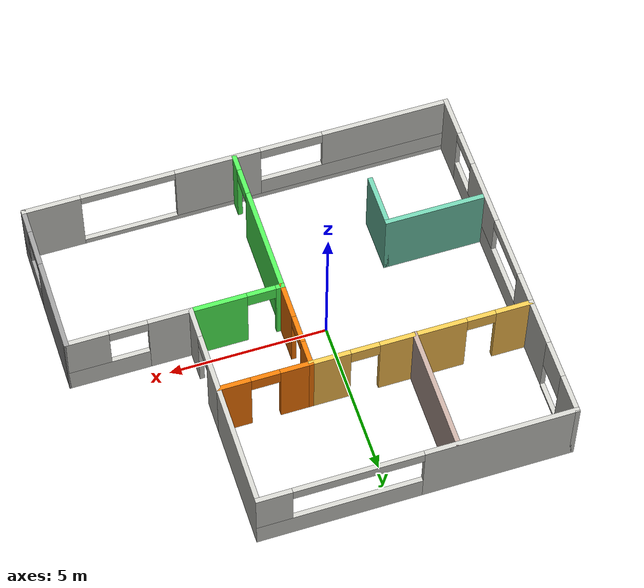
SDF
<?xml version='1.0'?>
<sdf version='1.6'>
  <model name='Apartment'>
    <pose frame=''>1.16007 0.412153 0 0 -0 0</pose>
    <link name='Wall_11'>
      <pose frame=''>1.52493 1.92485 0 0 -0 0</pose>
      <visual name='Wall_11_Visual_0'>
        <pose frame=''>-0.9825 0 1.25 0 -0 0</pose>
        <geometry>
          <box>
            <size>1.035 0.15 2.5</size>
          </box>
        </geometry>
        <material>
          <script>
            <uri>file://media/materials/scripts/gazebo.material</uri>
            <name>Gazebo/Grey</name>
          </script>
          <ambient>0.996078 0.47451 0.0196078 1</ambient>
        </material>
        <meta>
          <layer>0</layer>
        </meta>
      </visual>
      <collision name='Wall_11_Collision_0'>
        <geometry>
          <box>
            <size>1.035 0.15 2.5</size>
          </box>
        </geometry>
        <pose frame=''>-0.9825 0 1.25 0 -0 0</pose>
      </collision>
      <visual name='Wall_11_Visual_1'>
        <pose frame=''>0.9675 0 1.25 0 -0 0</pose>
        <geometry>
          <box>
            <size>1.065 0.15 2.5</size>
          </box>
        </geometry>
        <material>
          <script>
            <uri>file://media/materials/scripts/gazebo.material</uri>
            <name>Gazebo/Grey</name>
          </script>
          <ambient>0.996078 0.47451 0.0196078 1</ambient>
        </material>
        <meta>
          <layer>0</layer>
        </meta>
      </visual>
      <collision name='Wall_11_Collision_1'>
        <geometry>
          <box>
            <size>1.065 0.15 2.5</size>
          </box>
        </geometry>
        <pose frame=''>0.9675 0 1.25 0 -0 0</pose>
      </collision>
      <visual name='Wall_11_Visual_2'>
        <pose frame=''>-0.015 0 2.25 0 -0 0</pose>
        <geometry>
          <box>
            <size>0.9 0.15 0.5</size>
          </box>
        </geometry>
        <material>
          <script>
            <uri>file://media/materials/scripts/gazebo.material</uri>
            <name>Gazebo/Grey</name>
          </script>
          <ambient>0.996078 0.47451 0.0196078 1</ambient>
        </material>
        <meta>
          <layer>0</layer>
        </meta>
      </visual>
      <collision name='Wall_11_Collision_2'>
        <geometry>
          <box>
            <size>0.9 0.15 0.5</size>
          </box>
        </geometry>
        <pose frame=''>-0.015 0 2.25 0 -0 0</pose>
      </collision>
    </link>
    <link name='Wall_12'>
      <pose frame=''>2.94993 0.519847 0 0 0 -1.5708</pose>
      <visual name='Wall_12_Visual_0'>
        <pose frame=''>-0.962535 0 1.25 0 -0 0</pose>
        <geometry>
          <box>
            <size>1.03493 0.15 2.5</size>
          </box>
        </geometry>
        <material>
          <script>
            <uri>file://media/materials/scripts/gazebo.material</uri>
            <name>Gazebo/CeilingTiled</name>
          </script>
          <ambient>1 1 1 1</ambient>
        </material>
        <meta>
          <layer>0</layer>
        </meta>
      </visual>
      <collision name='Wall_12_Collision_0'>
        <geometry>
          <box>
            <size>1.03493 0.15 2.5</size>
          </box>
        </geometry>
        <pose frame=''>-0.962535 0 1.25 0 -0 0</pose>
      </collision>
      <visual name='Wall_12_Visual_1'>
        <pose frame=''>0.967465 0 1.25 0 -0 0</pose>
        <geometry>
          <box>
            <size>1.02507 0.15 2.5</size>
          </box>
        </geometry>
        <material>
          <script>
            <uri>file://media/materials/scripts/gazebo.material</uri>
            <name>Gazebo/CeilingTiled</name>
          </script>
          <ambient>1 1 1 1</ambient>
        </material>
        <meta>
          <layer>0</layer>
        </meta>
      </visual>
      <collision name='Wall_12_Collision_1'>
        <geometry>
          <box>
            <size>1.02507 0.15 2.5</size>
          </box>
        </geometry>
        <pose frame=''>0.967465 0 1.25 0 -0 0</pose>
      </collision>
      <visual name='Wall_12_Visual_2'>
        <pose frame=''>0.00493 0 2.25 0 -0 0</pose>
        <geometry>
          <box>
            <size>0.9 0.15 0.5</size>
          </box>
        </geometry>
        <material>
          <script>
            <uri>file://media/materials/scripts/gazebo.material</uri>
            <name>Gazebo/CeilingTiled</name>
          </script>
          <ambient>1 1 1 1</ambient>
        </material>
        <meta>
          <layer>0</layer>
        </meta>
      </visual>
      <collision name='Wall_12_Collision_2'>
        <geometry>
          <box>
            <size>0.9 0.15 0.5</size>
          </box>
        </geometry>
        <pose frame=''>0.00493 0 2.25 0 -0 0</pose>
      </collision>
    </link>
    <link name='Wall_13'>
      <pose frame=''>1.52493 -0.885153 0 0 -0 3.14159</pose>
      <visual name='Wall_13_Visual_0'>
        <pose frame=''>-0.592536 0 1.25 0 -0 0</pose>
        <geometry>
          <box>
            <size>1.81507 0.15 2.5</size>
          </box>
        </geometry>
        <material>
          <script>
            <uri>file://media/materials/scripts/gazebo.material</uri>
            <name>Gazebo/Grey</name>
          </script>
          <ambient>0.321569 1 0.345098 1</ambient>
        </material>
        <meta>
          <layer>0</layer>
        </meta>
      </visual>
      <collision name='Wall_13_Collision_0'>
        <geometry>
          <box>
            <size>1.81507 0.15 2.5</size>
          </box>
        </geometry>
        <pose frame=''>-0.592536 0 1.25 0 -0 0</pose>
      </collision>
      <visual name='Wall_13_Visual_1'>
        <pose frame=''>1.35754 0 1.25 0 -0 0</pose>
        <geometry>
          <box>
            <size>0.285073 0.15 2.5</size>
          </box>
        </geometry>
        <material>
          <script>
            <uri>file://media/materials/scripts/gazebo.material</uri>
            <name>Gazebo/Grey</name>
          </script>
          <ambient>0.321569 1 0.345098 1</ambient>
        </material>
        <meta>
          <layer>0</layer>
        </meta>
      </visual>
      <collision name='Wall_13_Collision_1'>
        <geometry>
          <box>
            <size>0.285073 0.15 2.5</size>
          </box>
        </geometry>
        <pose frame=''>1.35754 0 1.25 0 -0 0</pose>
      </collision>
      <visual name='Wall_13_Visual_2'>
        <pose frame=''>0.765 0 2.25 0 -0 0</pose>
        <geometry>
          <box>
            <size>0.9 0.15 0.5</size>
          </box>
        </geometry>
        <material>
          <script>
            <uri>file://media/materials/scripts/gazebo.material</uri>
            <name>Gazebo/Grey</name>
          </script>
          <ambient>0.321569 1 0.345098 1</ambient>
        </material>
        <meta>
          <layer>0</layer>
        </meta>
      </visual>
      <collision name='Wall_13_Collision_2'>
        <geometry>
          <box>
            <size>0.9 0.15 0.5</size>
          </box>
        </geometry>
        <pose frame=''>0.765 0 2.25 0 -0 0</pose>
      </collision>
    </link>
    <link name='Wall_14'>
      <pose frame=''>0.099928 0.519847 0 0 -0 1.5708</pose>
      <visual name='Wall_14_Visual_0'>
        <pose frame=''>-0.8739 0 1.25 0 -0 0</pose>
        <geometry>
          <box>
            <size>1.21261 0.15 2.5</size>
          </box>
        </geometry>
        <material>
          <script>
            <uri>file://media/materials/scripts/gazebo.material</uri>
            <name>Gazebo/Grey</name>
          </script>
          <ambient>0.996078 0.47451 0.0196078 1</ambient>
        </material>
        <meta>
          <layer>0</layer>
        </meta>
      </visual>
      <collision name='Wall_14_Collision_0'>
        <geometry>
          <box>
            <size>1.21261 0.15 2.5</size>
          </box>
        </geometry>
        <pose frame=''>-0.8739 0 1.25 0 -0 0</pose>
      </collision>
      <visual name='Wall_14_Visual_1'>
        <pose frame=''>1.0563 0 1.25 0 -0 0</pose>
        <geometry>
          <box>
            <size>0.847799 0.15 2.5</size>
          </box>
        </geometry>
        <material>
          <script>
            <uri>file://media/materials/scripts/gazebo.material</uri>
            <name>Gazebo/Grey</name>
          </script>
          <ambient>0.996078 0.47451 0.0196078 1</ambient>
        </material>
        <meta>
          <layer>0</layer>
        </meta>
      </visual>
      <collision name='Wall_14_Collision_1'>
        <geometry>
          <box>
            <size>0.847799 0.15 2.5</size>
          </box>
        </geometry>
        <pose frame=''>1.0563 0 1.25 0 -0 0</pose>
      </collision>
      <visual name='Wall_14_Visual_2'>
        <pose frame=''>0.182404 0 2.25 0 -0 0</pose>
        <geometry>
          <box>
            <size>0.9 0.15 0.5</size>
          </box>
        </geometry>
        <material>
          <script>
            <uri>file://media/materials/scripts/gazebo.material</uri>
            <name>Gazebo/Grey</name>
          </script>
          <ambient>0.996078 0.47451 0.0196078 1</ambient>
        </material>
        <meta>
          <layer>0</layer>
        </meta>
      </visual>
      <collision name='Wall_14_Collision_2'>
        <geometry>
          <box>
            <size>0.9 0.15 0.5</size>
          </box>
        </geometry>
        <pose frame=''>0.182404 0 2.25 0 -0 0</pose>
      </collision>
    </link>
    <link name='Wall_16'>
      <pose frame=''>4.87493 -0.885153 0 0 -0 0</pose>
      <visual name='Wall_16_Visual_0'>
        <pose frame=''>-1.29069 0 1.25 0 -0 0</pose>
        <geometry>
          <box>
            <size>1.41862 0.15 2.5</size>
          </box>
        </geometry>
        <material>
          <script>
            <uri>file://media/materials/scripts/gazebo.material</uri>
            <name>Gazebo/CeilingTiled</name>
          </script>
          <ambient>0.760784 0.662745 0.627451 1</ambient>
        </material>
        <meta>
          <layer>0</layer>
        </meta>
      </visual>
      <collision name='Wall_16_Collision_0'>
        <geometry>
          <box>
            <size>1.41862 0.15 2.5</size>
          </box>
        </geometry>
        <pose frame=''>-1.29069 0 1.25 0 -0 0</pose>
      </collision>
      <visual name='Wall_16_Visual_1'>
        <pose frame=''>0.709309 0 0.45 0 -0 0</pose>
        <geometry>
          <box>
            <size>2.58138 0.15 0.9</size>
          </box>
        </geometry>
        <material>
          <script>
            <uri>file://media/materials/scripts/gazebo.material</uri>
            <name>Gazebo/CeilingTiled</name>
          </script>
          <ambient>0.760784 0.662745 0.627451 1</ambient>
        </material>
        <meta>
          <layer>0</layer>
        </meta>
      </visual>
      <collision name='Wall_16_Collision_1'>
        <geometry>
          <box>
            <size>2.58138 0.15 0.9</size>
          </box>
        </geometry>
        <pose frame=''>0.709309 0 0.45 0 -0 0</pose>
      </collision>
      <visual name='Wall_16_Visual_2'>
        <pose frame=''>1.30931 0 1.7 0 -0 0</pose>
        <geometry>
          <box>
            <size>1.38138 0.15 1.6</size>
          </box>
        </geometry>
        <material>
          <script>
            <uri>file://media/materials/scripts/gazebo.material</uri>
            <name>Gazebo/CeilingTiled</name>
          </script>
          <ambient>0.760784 0.662745 0.627451 1</ambient>
        </material>
        <meta>
          <layer>0</layer>
        </meta>
      </visual>
      <collision name='Wall_16_Collision_2'>
        <geometry>
          <box>
            <size>1.38138 0.15 1.6</size>
          </box>
        </geometry>
        <pose frame=''>1.30931 0 1.7 0 -0 0</pose>
      </collision>
      <visual name='Wall_16_Visual_3'>
        <pose frame=''>0.018619 0 2.3 0 -0 0</pose>
        <geometry>
          <box>
            <size>1.2 0.15 0.4</size>
          </box>
        </geometry>
        <material>
          <script>
            <uri>file://media/materials/scripts/gazebo.material</uri>
            <name>Gazebo/CeilingTiled</name>
          </script>
          <ambient>0.760784 0.662745 0.627451 1</ambient>
        </material>
        <meta>
          <layer>0</layer>
        </meta>
      </visual>
      <collision name='Wall_16_Collision_3'>
        <geometry>
          <box>
            <size>1.2 0.15 0.4</size>
          </box>
        </geometry>
        <pose frame=''>0.018619 0 2.3 0 -0 0</pose>
      </collision>
    </link>
    <link name='Wall_18'>
      <pose frame=''>6.80018 -3.33 0 0 0 -1.57069</pose>
      <visual name='Wall_18_Visual_0'>
        <pose frame=''>-1.01487 0 1.25 0 -0 0</pose>
        <geometry>
          <box>
            <size>3.00995 0.15 2.5</size>
          </box>
        </geometry>
        <material>
          <script>
            <uri>file://media/materials/scripts/gazebo.material</uri>
            <name>Gazebo/Grey</name>
          </script>
          <ambient>1 1 1 1</ambient>
        </material>
        <meta>
          <layer>0</layer>
        </meta>
      </visual>
      <collision name='Wall_18_Collision_0'>
        <geometry>
          <box>
            <size>3.00995 0.15 2.5</size>
          </box>
        </geometry>
        <pose frame=''>-1.01487 0 1.25 0 -0 0</pose>
      </collision>
      <visual name='Wall_18_Visual_1'>
        <pose frame=''>1.50497 0 0.45 0 -0 0</pose>
        <geometry>
          <box>
            <size>2.02974 0.15 0.9</size>
          </box>
        </geometry>
        <material>
          <script>
            <uri>file://media/materials/scripts/gazebo.material</uri>
            <name>Gazebo/Grey</name>
          </script>
          <ambient>1 1 1 1</ambient>
        </material>
        <meta>
          <layer>0</layer>
        </meta>
      </visual>
      <collision name='Wall_18_Collision_1'>
        <geometry>
          <box>
            <size>2.02974 0.15 0.9</size>
          </box>
        </geometry>
        <pose frame=''>1.50497 0 0.45 0 -0 0</pose>
      </collision>
      <visual name='Wall_18_Visual_2'>
        <pose frame=''>2.10497 0 1.7 0 -0 0</pose>
        <geometry>
          <box>
            <size>0.829741 0.15 1.6</size>
          </box>
        </geometry>
        <material>
          <script>
            <uri>file://media/materials/scripts/gazebo.material</uri>
            <name>Gazebo/Grey</name>
          </script>
          <ambient>1 1 1 1</ambient>
        </material>
        <meta>
          <layer>0</layer>
        </meta>
      </visual>
      <collision name='Wall_18_Collision_2'>
        <geometry>
          <box>
            <size>0.829741 0.15 1.6</size>
          </box>
        </geometry>
        <pose frame=''>2.10497 0 1.7 0 -0 0</pose>
      </collision>
      <visual name='Wall_18_Visual_3'>
        <pose frame=''>1.0901 0 2.3 0 -0 0</pose>
        <geometry>
          <box>
            <size>1.2 0.15 0.4</size>
          </box>
        </geometry>
        <material>
          <script>
            <uri>file://media/materials/scripts/gazebo.material</uri>
            <name>Gazebo/Grey</name>
          </script>
          <ambient>1 1 1 1</ambient>
        </material>
        <meta>
          <layer>0</layer>
        </meta>
      </visual>
      <collision name='Wall_18_Collision_3'>
        <geometry>
          <box>
            <size>1.2 0.15 0.4</size>
          </box>
        </geometry>
        <pose frame=''>1.0901 0 2.3 0 -0 0</pose>
      </collision>
    </link>
    <link name='Wall_19'>
      <pose frame=''>0.000427 -5.77484 0 0 -0 3.14159</pose>
      <visual name='Wall_19_Visual_0'>
        <pose frame=''>-5.94597 0 1.25 0 -0 0</pose>
        <geometry>
          <box>
            <size>1.85806 0.15 2.5</size>
          </box>
        </geometry>
        <material>
          <script>
            <uri>file://media/materials/scripts/gazebo.material</uri>
            <name>Gazebo/CeilingTiled</name>
          </script>
          <ambient>1 1 1 1</ambient>
        </material>
        <meta>
          <layer>0</layer>
        </meta>
      </visual>
      <collision name='Wall_19_Collision_0'>
        <geometry>
          <box>
            <size>1.85806 0.15 2.5</size>
          </box>
        </geometry>
        <pose frame=''>-5.94597 0 1.25 0 -0 0</pose>
      </collision>
      <visual name='Wall_19_Visual_1'>
        <pose frame=''>0.929031 0 0.1 0 -0 0</pose>
        <geometry>
          <box>
            <size>11.8919 0.15 0.2</size>
          </box>
        </geometry>
        <material>
          <script>
            <uri>file://media/materials/scripts/gazebo.material</uri>
            <name>Gazebo/CeilingTiled</name>
          </script>
          <ambient>1 1 1 1</ambient>
        </material>
        <meta>
          <layer>0</layer>
        </meta>
      </visual>
      <collision name='Wall_19_Collision_1'>
        <geometry>
          <box>
            <size>11.8919 0.15 0.2</size>
          </box>
        </geometry>
        <pose frame=''>0.929031 0 0.1 0 -0 0</pose>
      </collision>
      <visual name='Wall_19_Visual_2'>
        <pose frame=''>-0.643119 0 1.35 0 -0 0</pose>
        <geometry>
          <box>
            <size>2.74764 0.15 2.3</size>
          </box>
        </geometry>
        <material>
          <script>
            <uri>file://media/materials/scripts/gazebo.material</uri>
            <name>Gazebo/CeilingTiled</name>
          </script>
          <ambient>1 1 1 1</ambient>
        </material>
        <meta>
          <layer>0</layer>
        </meta>
      </visual>
      <collision name='Wall_19_Collision_2'>
        <geometry>
          <box>
            <size>2.74764 0.15 2.3</size>
          </box>
        </geometry>
        <pose frame=''>-0.643119 0 1.35 0 -0 0</pose>
      </collision>
      <visual name='Wall_19_Visual_3'>
        <pose frame=''>3.80285 0 0.55 0 -0 0</pose>
        <geometry>
          <box>
            <size>6.1443 0.15 0.7</size>
          </box>
        </geometry>
        <material>
          <script>
            <uri>file://media/materials/scripts/gazebo.material</uri>
            <name>Gazebo/CeilingTiled</name>
          </script>
          <ambient>1 1 1 1</ambient>
        </material>
        <meta>
          <layer>0</layer>
        </meta>
      </visual>
      <collision name='Wall_19_Collision_3'>
        <geometry>
          <box>
            <size>6.1443 0.15 0.7</size>
          </box>
        </geometry>
        <pose frame=''>3.80285 0 0.55 0 -0 0</pose>
      </collision>
      <visual name='Wall_19_Visual_4'>
        <pose frame=''>4.80285 0 1.7 0 -0 0</pose>
        <geometry>
          <box>
            <size>4.1443 0.15 1.6</size>
          </box>
        </geometry>
        <material>
          <script>
            <uri>file://media/materials/scripts/gazebo.material</uri>
            <name>Gazebo/CeilingTiled</name>
          </script>
          <ambient>1 1 1 1</ambient>
        </material>
        <meta>
          <layer>0</layer>
        </meta>
      </visual>
      <collision name='Wall_19_Collision_4'>
        <geometry>
          <box>
            <size>4.1443 0.15 1.6</size>
          </box>
        </geometry>
        <pose frame=''>4.80285 0 1.7 0 -0 0</pose>
      </collision>
      <visual name='Wall_19_Visual_5'>
        <pose frame=''>1.7307 0 2.3 0 -0 0</pose>
        <geometry>
          <box>
            <size>2 0.15 0.4</size>
          </box>
        </geometry>
        <material>
          <script>
            <uri>file://media/materials/scripts/gazebo.material</uri>
            <name>Gazebo/CeilingTiled</name>
          </script>
          <ambient>1 1 1 1</ambient>
        </material>
        <meta>
          <layer>0</layer>
        </meta>
      </visual>
      <collision name='Wall_19_Collision_5'>
        <geometry>
          <box>
            <size>2 0.15 0.4</size>
          </box>
        </geometry>
        <pose frame=''>1.7307 0 2.3 0 -0 0</pose>
      </collision>
      <visual name='Wall_19_Visual_6'>
        <pose frame=''>-3.51694 0 2.35 0 -0 0</pose>
        <geometry>
          <box>
            <size>3 0.15 0.3</size>
          </box>
        </geometry>
        <material>
          <script>
            <uri>file://media/materials/scripts/gazebo.material</uri>
            <name>Gazebo/CeilingTiled</name>
          </script>
          <ambient>1 1 1 1</ambient>
        </material>
        <meta>
          <layer>0</layer>
        </meta>
      </visual>
      <collision name='Wall_19_Collision_6'>
        <geometry>
          <box>
            <size>3 0.15 0.3</size>
          </box>
        </geometry>
        <pose frame=''>-3.51694 0 2.35 0 -0 0</pose>
      </collision>
    </link>
    <link name='Wall_20'>
      <pose frame=''>-6.79982 -1.925 0 0 -0 1.57086</pose>
      <visual name='Wall_20_Visual_0'>
        <pose frame=''>-3.25093 0 1.25 0 -0 0</pose>
        <geometry>
          <box>
            <size>1.34782 0.15 2.5</size>
          </box>
        </geometry>
        <material>
          <script>
            <uri>file://media/materials/scripts/gazebo.material</uri>
            <name>Gazebo/CeilingTiled</name>
          </script>
          <ambient>1 1 1 1</ambient>
        </material>
        <meta>
          <layer>0</layer>
        </meta>
      </visual>
      <collision name='Wall_20_Collision_0'>
        <geometry>
          <box>
            <size>1.34782 0.15 2.5</size>
          </box>
        </geometry>
        <pose frame=''>-3.25093 0 1.25 0 -0 0</pose>
      </collision>
      <visual name='Wall_20_Visual_1'>
        <pose frame=''>0.67391 0 0.45 0 -0 0</pose>
        <geometry>
          <box>
            <size>6.50187 0.15 0.9</size>
          </box>
        </geometry>
        <material>
          <script>
            <uri>file://media/materials/scripts/gazebo.material</uri>
            <name>Gazebo/CeilingTiled</name>
          </script>
          <ambient>1 1 1 1</ambient>
        </material>
        <meta>
          <layer>0</layer>
        </meta>
      </visual>
      <collision name='Wall_20_Collision_1'>
        <geometry>
          <box>
            <size>6.50187 0.15 0.9</size>
          </box>
        </geometry>
        <pose frame=''>0.67391 0 0.45 0 -0 0</pose>
      </collision>
      <visual name='Wall_20_Visual_2'>
        <pose frame=''>-0.288611 0 1.7 0 -0 0</pose>
        <geometry>
          <box>
            <size>2.17682 0.15 1.6</size>
          </box>
        </geometry>
        <material>
          <script>
            <uri>file://media/materials/scripts/gazebo.material</uri>
            <name>Gazebo/CeilingTiled</name>
          </script>
          <ambient>1 1 1 1</ambient>
        </material>
        <meta>
          <layer>0</layer>
        </meta>
      </visual>
      <collision name='Wall_20_Collision_2'>
        <geometry>
          <box>
            <size>2.17682 0.15 1.6</size>
          </box>
        </geometry>
        <pose frame=''>-0.288611 0 1.7 0 -0 0</pose>
      </collision>
      <visual name='Wall_20_Visual_3'>
        <pose frame=''>3.36232 0 1.7 0 -0 0</pose>
        <geometry>
          <box>
            <size>1.12504 0.15 1.6</size>
          </box>
        </geometry>
        <material>
          <script>
            <uri>file://media/materials/scripts/gazebo.material</uri>
            <name>Gazebo/CeilingTiled</name>
          </script>
          <ambient>1 1 1 1</ambient>
        </material>
        <meta>
          <layer>0</layer>
        </meta>
      </visual>
      <collision name='Wall_20_Collision_3'>
        <geometry>
          <box>
            <size>1.12504 0.15 1.6</size>
          </box>
        </geometry>
        <pose frame=''>3.36232 0 1.7 0 -0 0</pose>
      </collision>
      <visual name='Wall_20_Visual_4'>
        <pose frame=''>-1.97702 0 2.3 0 -0 0</pose>
        <geometry>
          <box>
            <size>1.2 0.15 0.4</size>
          </box>
        </geometry>
        <material>
          <script>
            <uri>file://media/materials/scripts/gazebo.material</uri>
            <name>Gazebo/CeilingTiled</name>
          </script>
          <ambient>1 1 1 1</ambient>
        </material>
        <meta>
          <layer>0</layer>
        </meta>
      </visual>
      <collision name='Wall_20_Collision_4'>
        <geometry>
          <box>
            <size>1.2 0.15 0.4</size>
          </box>
        </geometry>
        <pose frame=''>-1.97702 0 2.3 0 -0 0</pose>
      </collision>
      <visual name='Wall_20_Visual_5'>
        <pose frame=''>1.7998 0 2.3 0 -0 0</pose>
        <geometry>
          <box>
            <size>2 0.15 0.4</size>
          </box>
        </geometry>
        <material>
          <script>
            <uri>file://media/materials/scripts/gazebo.material</uri>
            <name>Gazebo/CeilingTiled</name>
          </script>
          <ambient>1 1 1 1</ambient>
        </material>
        <meta>
          <layer>0</layer>
        </meta>
      </visual>
      <collision name='Wall_20_Collision_5'>
        <geometry>
          <box>
            <size>2 0.15 0.4</size>
          </box>
        </geometry>
        <pose frame=''>1.7998 0 2.3 0 -0 0</pose>
      </collision>
    </link>
    <link name='Wall_21'>
      <pose frame=''>-3.35007 1.92485 0 0 -0 0</pose>
      <visual name='Wall_21_Visual_0'>
        <pose frame=''>-2.92004 0 1.25 0 -0 0</pose>
        <geometry>
          <box>
            <size>1.21065 0.15 2.5</size>
          </box>
        </geometry>
        <material>
          <script>
            <uri>file://media/materials/scripts/gazebo.material</uri>
            <name>Gazebo/Grey</name>
          </script>
          <ambient>1 0.764706 0.305882 1</ambient>
        </material>
        <meta>
          <layer>0</layer>
        </meta>
      </visual>
      <collision name='Wall_21_Collision_0'>
        <geometry>
          <box>
            <size>1.21065 0.15 2.5</size>
          </box>
        </geometry>
        <pose frame=''>-2.92004 0 1.25 0 -0 0</pose>
      </collision>
      <visual name='Wall_21_Visual_1'>
        <pose frame=''>-0.045749 0 1.25 0 -0 0</pose>
        <geometry>
          <box>
            <size>2.73793 0.15 2.5</size>
          </box>
        </geometry>
        <material>
          <script>
            <uri>file://media/materials/scripts/gazebo.material</uri>
            <name>Gazebo/Grey</name>
          </script>
          <ambient>1 0.764706 0.305882 1</ambient>
        </material>
        <meta>
          <layer>0</layer>
        </meta>
      </visual>
      <collision name='Wall_21_Collision_1'>
        <geometry>
          <box>
            <size>2.73793 0.15 2.5</size>
          </box>
        </geometry>
        <pose frame=''>-0.045749 0 1.25 0 -0 0</pose>
      </collision>
      <visual name='Wall_21_Visual_2'>
        <pose frame=''>2.87429 0 1.25 0 -0 0</pose>
        <geometry>
          <box>
            <size>1.30214 0.15 2.5</size>
          </box>
        </geometry>
        <material>
          <script>
            <uri>file://media/materials/scripts/gazebo.material</uri>
            <name>Gazebo/Grey</name>
          </script>
          <ambient>1 0.764706 0.305882 1</ambient>
        </material>
        <meta>
          <layer>0</layer>
        </meta>
      </visual>
      <collision name='Wall_21_Collision_2'>
        <geometry>
          <box>
            <size>1.30214 0.15 2.5</size>
          </box>
        </geometry>
        <pose frame=''>2.87429 0 1.25 0 -0 0</pose>
      </collision>
      <visual name='Wall_21_Visual_3'>
        <pose frame=''>-1.86471 0 2.25 0 -0 0</pose>
        <geometry>
          <box>
            <size>0.9 0.15 0.5</size>
          </box>
        </geometry>
        <material>
          <script>
            <uri>file://media/materials/scripts/gazebo.material</uri>
            <name>Gazebo/Grey</name>
          </script>
          <ambient>1 0.764706 0.305882 1</ambient>
        </material>
        <meta>
          <layer>0</layer>
        </meta>
      </visual>
      <collision name='Wall_21_Collision_3'>
        <geometry>
          <box>
            <size>0.9 0.15 0.5</size>
          </box>
        </geometry>
        <pose frame=''>-1.86471 0 2.25 0 -0 0</pose>
      </collision>
      <visual name='Wall_21_Visual_4'>
        <pose frame=''>1.77322 0 2.25 0 -0 0</pose>
        <geometry>
          <box>
            <size>0.9 0.15 0.5</size>
          </box>
        </geometry>
        <material>
          <script>
            <uri>file://media/materials/scripts/gazebo.material</uri>
            <name>Gazebo/Grey</name>
          </script>
          <ambient>1 0.764706 0.305882 1</ambient>
        </material>
        <meta>
          <layer>0</layer>
        </meta>
      </visual>
      <collision name='Wall_21_Collision_4'>
        <geometry>
          <box>
            <size>0.9 0.15 0.5</size>
          </box>
        </geometry>
        <pose frame=''>1.77322 0 2.25 0 -0 0</pose>
      </collision>
    </link>
    <link name='Wall_23'>
      <pose frame=''>-6.80007 3.84985 0 0 -0 1.5708</pose>
      <visual name='Wall_23_Visual_0'>
        <pose frame=''>-1.23081 0 1.25 0 -0 0</pose>
        <geometry>
          <box>
            <size>1.53838 0.15 2.5</size>
          </box>
        </geometry>
        <material>
          <script>
            <uri>file://media/materials/scripts/gazebo.material</uri>
            <name>Gazebo/CeilingTiled</name>
          </script>
          <ambient>1 1 1 1</ambient>
        </material>
        <meta>
          <layer>0</layer>
        </meta>
      </visual>
      <collision name='Wall_23_Collision_0'>
        <geometry>
          <box>
            <size>1.53838 0.15 2.5</size>
          </box>
        </geometry>
        <pose frame=''>-1.23081 0 1.25 0 -0 0</pose>
      </collision>
      <visual name='Wall_23_Visual_1'>
        <pose frame=''>1.36919 0 1.25 0 -0 0</pose>
        <geometry>
          <box>
            <size>1.26162 0.15 2.5</size>
          </box>
        </geometry>
        <material>
          <script>
            <uri>file://media/materials/scripts/gazebo.material</uri>
            <name>Gazebo/CeilingTiled</name>
          </script>
          <ambient>1 1 1 1</ambient>
        </material>
        <meta>
          <layer>0</layer>
        </meta>
      </visual>
      <collision name='Wall_23_Collision_1'>
        <geometry>
          <box>
            <size>1.26162 0.15 2.5</size>
          </box>
        </geometry>
        <pose frame=''>1.36919 0 1.25 0 -0 0</pose>
      </collision>
      <visual name='Wall_23_Visual_2'>
        <pose frame=''>0.138378 0 0 0 -0 0</pose>
        <geometry>
          <box>
            <size>1.2 0.15 0.1</size>
          </box>
        </geometry>
        <material>
          <script>
            <uri>file://media/materials/scripts/gazebo.material</uri>
            <name>Gazebo/CeilingTiled</name>
          </script>
          <ambient>1 1 1 1</ambient>
        </material>
        <meta>
          <layer>0</layer>
        </meta>
      </visual>
      <collision name='Wall_23_Collision_2'>
        <geometry>
          <box>
            <size>1.2 0.15 0.1</size>
          </box>
        </geometry>
        <pose frame=''>0.138378 0 0 0 -0 0</pose>
      </collision>
      <visual name='Wall_23_Visual_3'>
        <pose frame=''>0.138378 0 1.85 0 -0 0</pose>
        <geometry>
          <box>
            <size>1.2 0.15 1.3</size>
          </box>
        </geometry>
        <material>
          <script>
            <uri>file://media/materials/scripts/gazebo.material</uri>
            <name>Gazebo/CeilingTiled</name>
          </script>
          <ambient>1 1 1 1</ambient>
        </material>
        <meta>
          <layer>0</layer>
        </meta>
      </visual>
      <collision name='Wall_23_Collision_3'>
        <geometry>
          <box>
            <size>1.2 0.15 1.3</size>
          </box>
        </geometry>
        <pose frame=''>0.138378 0 1.85 0 -0 0</pose>
      </collision>
    </link>
    <link name='Wall_24'>
      <pose frame=''>-1.92507 5.77485 0 0 -0 0</pose>
      <visual name='Wall_24_Visual_0'>
        <pose frame=''>-2.56096 0 1.25 0 -0 0</pose>
        <geometry>
          <box>
            <size>4.77807 0.15 2.5</size>
          </box>
        </geometry>
        <material>
          <script>
            <uri>file://media/materials/scripts/gazebo.material</uri>
            <name>Gazebo/CeilingTiled</name>
          </script>
          <ambient>1 1 1 1</ambient>
        </material>
        <meta>
          <layer>0</layer>
        </meta>
      </visual>
      <collision name='Wall_24_Collision_0'>
        <geometry>
          <box>
            <size>4.77807 0.15 2.5</size>
          </box>
        </geometry>
        <pose frame=''>-2.56096 0 1.25 0 -0 0</pose>
      </collision>
      <visual name='Wall_24_Visual_1'>
        <pose frame=''>2.38903 0 0.45 0 -0 0</pose>
        <geometry>
          <box>
            <size>5.12193 0.15 0.9</size>
          </box>
        </geometry>
        <material>
          <script>
            <uri>file://media/materials/scripts/gazebo.material</uri>
            <name>Gazebo/CeilingTiled</name>
          </script>
          <ambient>1 1 1 1</ambient>
        </material>
        <meta>
          <layer>0</layer>
        </meta>
      </visual>
      <collision name='Wall_24_Collision_1'>
        <geometry>
          <box>
            <size>5.12193 0.15 0.9</size>
          </box>
        </geometry>
        <pose frame=''>2.38903 0 0.45 0 -0 0</pose>
      </collision>
      <visual name='Wall_24_Visual_2'>
        <pose frame=''>4.38903 0 1.7 0 -0 0</pose>
        <geometry>
          <box>
            <size>1.12193 0.15 1.6</size>
          </box>
        </geometry>
        <material>
          <script>
            <uri>file://media/materials/scripts/gazebo.material</uri>
            <name>Gazebo/CeilingTiled</name>
          </script>
          <ambient>1 1 1 1</ambient>
        </material>
        <meta>
          <layer>0</layer>
        </meta>
      </visual>
      <collision name='Wall_24_Collision_2'>
        <geometry>
          <box>
            <size>1.12193 0.15 1.6</size>
          </box>
        </geometry>
        <pose frame=''>4.38903 0 1.7 0 -0 0</pose>
      </collision>
      <visual name='Wall_24_Visual_3'>
        <pose frame=''>1.82807 0 2.3 0 -0 0</pose>
        <geometry>
          <box>
            <size>4 0.15 0.4</size>
          </box>
        </geometry>
        <material>
          <script>
            <uri>file://media/materials/scripts/gazebo.material</uri>
            <name>Gazebo/CeilingTiled</name>
          </script>
          <ambient>1 1 1 1</ambient>
        </material>
        <meta>
          <layer>0</layer>
        </meta>
      </visual>
      <collision name='Wall_24_Collision_3'>
        <geometry>
          <box>
            <size>4 0.15 0.4</size>
          </box>
        </geometry>
        <pose frame=''>1.82807 0 2.3 0 -0 0</pose>
      </collision>
    </link>
    <link name='Wall_25'>
      <collision name='Wall_25_Collision'>
        <geometry>
          <box>
            <size>3.99969 0.15 2.5</size>
          </box>
        </geometry>
        <pose frame=''>0 0 1.25 0 -0 0</pose>
      </collision>
      <visual name='Wall_25_Visual'>
        <pose frame=''>0 0 1.25 0 -0 0</pose>
        <geometry>
          <box>
            <size>3.99969 0.15 2.5</size>
          </box>
        </geometry>
        <material>
          <script>
            <uri>file://media/materials/scripts/gazebo.material</uri>
            <name>Gazebo/CeilingTiled</name>
          </script>
          <ambient>1 1 1 1</ambient>
        </material>
        <meta>
          <layer>0</layer>
        </meta>
      </visual>
      <pose frame=''>2.94993 3.84985 0 0 0 -1.5708</pose>
    </link>
    <link name='Wall_27'>
      <collision name='Wall_27_Collision'>
        <geometry>
          <box>
            <size>4 0.15 2.5</size>
          </box>
        </geometry>
        <pose frame=''>0 0 1.25 0 -0 0</pose>
      </collision>
      <visual name='Wall_27_Visual'>
        <pose frame=''>0 0 1.25 0 -0 0</pose>
        <geometry>
          <box>
            <size>4 0.15 2.5</size>
          </box>
        </geometry>
        <material>
          <script>
            <uri>file://media/materials/scripts/gazebo.material</uri>
            <name>Gazebo/Grey</name>
          </script>
          <ambient>0.760784 0.662745 0.627451 1</ambient>
        </material>
        <meta>
          <layer>0</layer>
        </meta>
      </visual>
      <pose frame=''>-3.13347 3.83972 0 0 -0 1.5708</pose>
    </link>
    <link name='Wall_31'>
      <pose frame=''>0.099928 -3.31015 0 0 0 -1.5708</pose>
      <visual name='Wall_31_Visual_0'>
        <pose frame=''>-0.723829 0 1.25 0 -0 0</pose>
        <geometry>
          <box>
            <size>3.55234 0.15 2.5</size>
          </box>
        </geometry>
        <material>
          <script>
            <uri>file://media/materials/scripts/gazebo.material</uri>
            <name>Gazebo/Grey</name>
          </script>
          <ambient>0.321569 1 0.345098 1</ambient>
        </material>
        <meta>
          <layer>0</layer>
        </meta>
      </visual>
      <collision name='Wall_31_Collision_0'>
        <geometry>
          <box>
            <size>3.55234 0.15 2.5</size>
          </box>
        </geometry>
        <pose frame=''>-0.723829 0 1.25 0 -0 0</pose>
      </collision>
      <visual name='Wall_31_Visual_1'>
        <pose frame=''>2.22617 0 1.25 0 -0 0</pose>
        <geometry>
          <box>
            <size>0.547658 0.15 2.5</size>
          </box>
        </geometry>
        <material>
          <script>
            <uri>file://media/materials/scripts/gazebo.material</uri>
            <name>Gazebo/Grey</name>
          </script>
          <ambient>0.321569 1 0.345098 1</ambient>
        </material>
        <meta>
          <layer>0</layer>
        </meta>
      </visual>
      <collision name='Wall_31_Collision_1'>
        <geometry>
          <box>
            <size>0.547658 0.15 2.5</size>
          </box>
        </geometry>
        <pose frame=''>2.22617 0 1.25 0 -0 0</pose>
      </collision>
      <visual name='Wall_31_Visual_2'>
        <pose frame=''>1.50234 0 2.25 0 -0 0</pose>
        <geometry>
          <box>
            <size>0.9 0.15 0.5</size>
          </box>
        </geometry>
        <material>
          <script>
            <uri>file://media/materials/scripts/gazebo.material</uri>
            <name>Gazebo/Grey</name>
          </script>
          <ambient>0.321569 1 0.345098 1</ambient>
        </material>
        <meta>
          <layer>0</layer>
        </meta>
      </visual>
      <collision name='Wall_31_Collision_2'>
        <geometry>
          <box>
            <size>0.9 0.15 0.5</size>
          </box>
        </geometry>
        <pose frame=''>1.50234 0 2.25 0 -0 0</pose>
      </collision>
    </link>
    <link name='Wall_35'>
      <collision name='Wall_35_Collision'>
        <geometry>
          <box>
            <size>3.25 0.15 2.5</size>
          </box>
        </geometry>
        <pose frame=''>0 0 1.25 0 -0 0</pose>
      </collision>
      <visual name='Wall_35_Visual'>
        <pose frame=''>0 0 1.25 0 -0 0</pose>
        <geometry>
          <box>
            <size>3.25 0.15 2.5</size>
          </box>
        </geometry>
        <material>
          <script>
            <uri>file://media/materials/scripts/gazebo.material</uri>
            <name>Gazebo/Grey</name>
          </script>
          <ambient>0.435294 0.796078 0.67451 1</ambient>
        </material>
        <meta>
          <layer>0</layer>
        </meta>
      </visual>
      <pose frame=''>-5.17735 -2.08457 0 0 -0 0</pose>
    </link>
    <link name='Wall_36'>
      <collision name='Wall_36_Collision'>
        <geometry>
          <box>
            <size>1.75 0.15 2.5</size>
          </box>
        </geometry>
        <pose frame=''>0 0 1.25 0 -0 0</pose>
      </collision>
      <visual name='Wall_36_Visual'>
        <pose frame=''>0 0 1.25 0 -0 0</pose>
        <geometry>
          <box>
            <size>1.75 0.15 2.5</size>
          </box>
        </geometry>
        <material>
          <script>
            <uri>file://media/materials/scripts/gazebo.material</uri>
            <name>Gazebo/Grey</name>
          </script>
          <ambient>0.435294 0.796078 0.67451 1</ambient>
        </material>
        <meta>
          <layer>0</layer>
        </meta>
      </visual>
      <pose frame=''>-3.62735 -2.88457 0 0 0 -1.5708</pose>
    </link>
    <static>1</static>
  </model>
</sdf>
